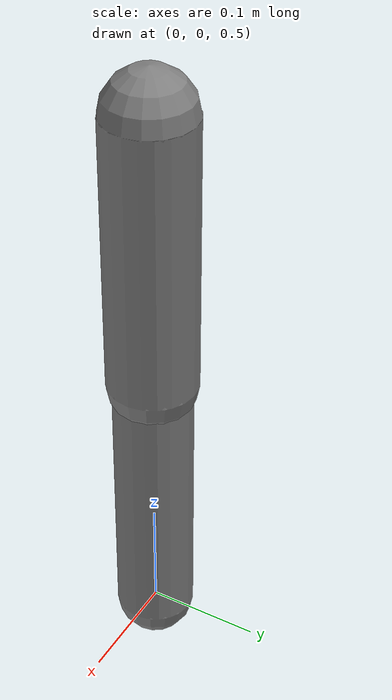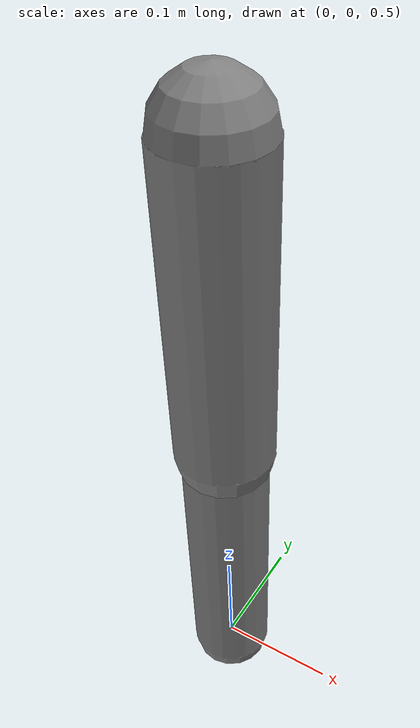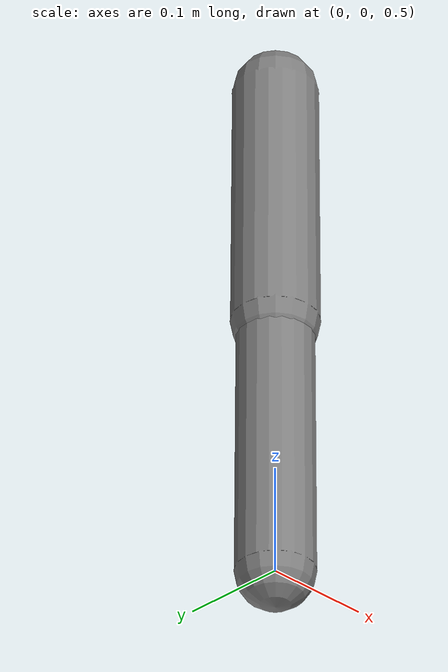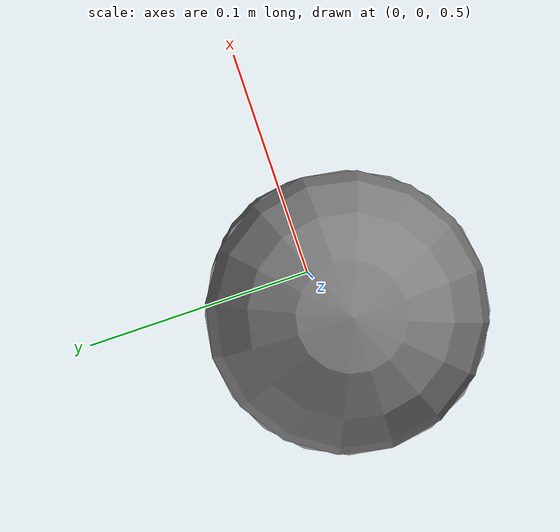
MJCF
<mujoco model="ohmc_semantic_contract_fixture">
  <compiler angle="radian"/>
  <option timestep="0.002" gravity="0 0 0"/>
  <worldbody>
    <body name="waist_body" pos="0 0 1">
      <joint name="waist_yaw_joint" type="hinge" axis="0 0 1" range="-2.6 2.6"/>
      <geom type="capsule" fromto="0 0 0 0 0 -0.25" size="0.04" mass="0.1"/>
      <body name="left_knee_body" pos="0 0 -0.25">
        <joint name="left_knee_joint" type="hinge" axis="0 1 0" range="-0.08 2.4"/>
        <geom type="capsule" fromto="0 0 0 0 0 -0.25" size="0.035" mass="0.1"/>
      </body>
    </body>
  </worldbody>
</mujoco>
